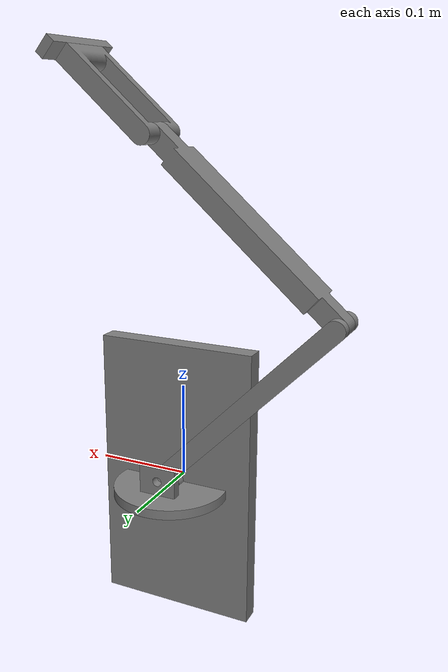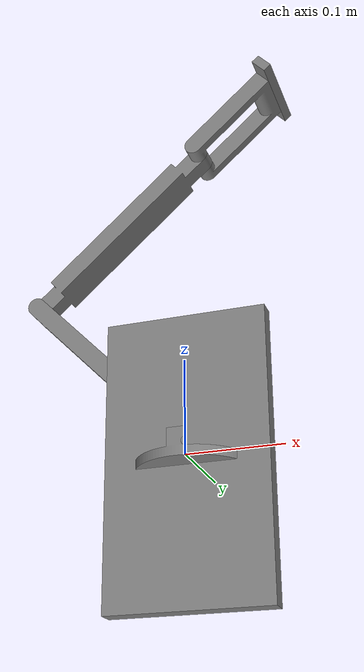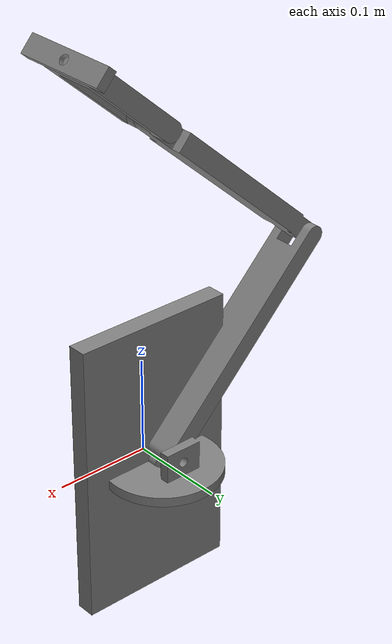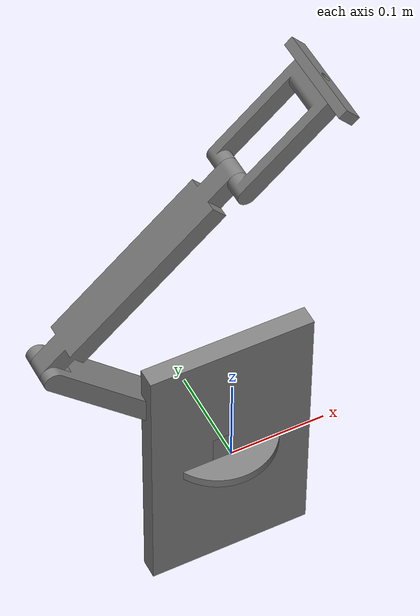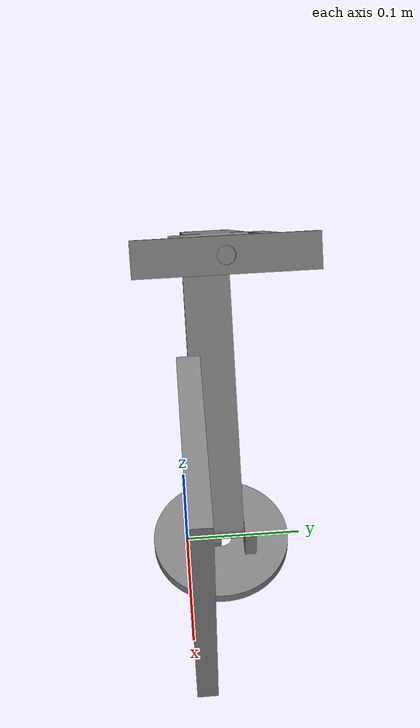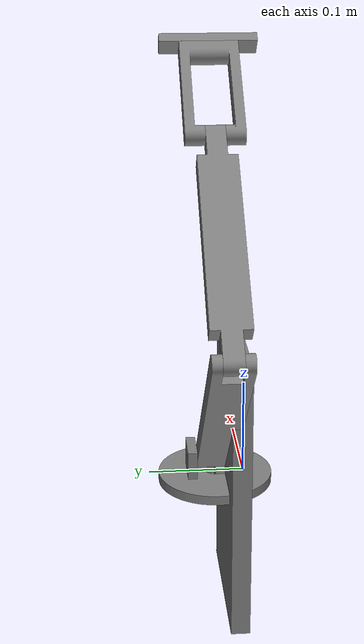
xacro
<?xml version="1.0"?>
<robot xmlns:xacro="http://www.ros.org/wiki/xacro">
    <material name="gray">
        <color rgba ="0.5 0.5 0.5 1.0"/>
    </material>

    <link name = "base_link">
        <visual>
            <origin xyz="0 0 0"/>
            <geometry>
                <mesh filename="package://aurora_arm_v2/meshes/base_link.stl" scale="0.001 0.001 0.001"/>
            </geometry>
            <material name="gray"/>
        </visual>
        <collision>
            <origin xyz="0 0 0"/>
            <geometry>
                <mesh filename="package://aurora_arm_v2/meshes/base_link.stl" scale="0.001 0.001 0.001"/>
            </geometry>
        </collision>
    </link>

    <link name = "base_spin_link">
        <visual>
            <origin xyz="-0.0 -0.03 -0.0"/>
            <geometry>
                <mesh filename="package://aurora_arm_v2/meshes/arm1_link_1.stl" scale="0.001 0.001 0.001"/>
            </geometry>
            <material name="gray"/>
        </visual>
        <collision>
            <origin xyz="-0.0 -0.03 -0.0"/>
            <geometry>
                <mesh filename="package://aurora_arm_v2/meshes/arm1_link_1.stl" scale="0.001 0.001 0.001"/>
            </geometry>
        </collision>
    </link>

    <link name = "arm2_link">
        <visual>
            <origin xyz="5e-06 -0.045 0.02"/>
            <geometry>
                <mesh filename="package://aurora_arm_v2/meshes/arm2_link_1.stl" scale="0.001 0.001 0.001"/>
            </geometry>
            <material name="gray"/>
        </visual>

        <collision>
            <origin xyz="5e-06 -0.045 0.02"/>
            <geometry>
                <mesh filename="package://aurora_arm_v2/meshes/arm2_link_1.stl" scale="0.001 0.001 0.001"/>
            </geometry>
        </collision>

    </link>

    <link name = "arm3_link">
        <visual>
            <origin xyz="0.175348 -0.223192 -0.010046"/>
            <geometry>
                <mesh filename="package://aurora_arm_v2/meshes/arm3_link_1.stl" scale="0.001 0.001 0.001"/>
            </geometry>
            <material name="gray"/>
        </visual>

        <collision>
            <origin xyz="0.175348 -0.223192 -0.010046"/>
            <geometry>
                <mesh filename="package://aurora_arm_v2/meshes/arm3_link_1.stl" scale="0.001 0.001 0.001"/>
            </geometry>
        </collision>

    </link>

    <link name = "arm4_link">
        <visual>
            <origin xyz="-0.011997 -0.388722 0.010003"/>
            <geometry>
                <mesh filename="package://aurora_arm_v2/meshes/arm4_link_1.stl" scale="0.001 0.001 0.001"/>
            </geometry>
            <material name="gray"/>
        </visual>

        <collision>
            <origin xyz="-0.011997 -0.388722 0.010003"/>
            <geometry>
                <mesh filename="package://aurora_arm_v2/meshes/arm4_link_1.stl" scale="0.001 0.001 0.001"/>
            </geometry>
        </collision>

    </link>

    <link name = "arm5_link">
        <visual>
            <origin xyz="-0.026167 -0.502846 7e-06"/>
            <geometry>
                <mesh filename="package://aurora_arm_v2/meshes/arm5_link_1.stl" scale="0.001 0.001 0.001"/>
            </geometry>
            <material name="gray"/>
        </visual>

        <collision>
            <origin xyz="-0.026167 -0.502846 7e-06"/>
            <geometry>
                <mesh filename="package://aurora_arm_v2/meshes/arm5_link_1.stl" scale="0.001 0.001 0.001"/>
            </geometry>
        </collision>

    </link>

    <joint name ="body_spin_joint" type="fixed">
        <parent link="base_link"/>
        <child link="base_spin_link"/>
        <origin xyz="0.0 0.03 0.0" rpy="1.5707963267948966 0 0"/>
        <axis xyz="0.0 1.0 0.0"/>
        <limit upper="-0.392699" lower="-2.748894" effort="100" velocity="100"/>
    </joint>

    <joint name ="arm1_joint" type="revolute">
        <parent link="base_spin_link"/>
        <child link="arm2_link"/>
        <origin xyz="-5e-06 0.015 -0.02" rpy="0 0 0"/>
        <axis xyz="-0.00026 -0.0 -1.0"/>
        <limit upper="1.570796" lower="-0.785398" effort="100" velocity="100"/>
    </joint>

    <joint name="arm2_joint" type="revolute">
        <parent link="arm2_link"/>
        <child link="arm3_link"/>
        <origin xyz="-0.175343 0.178192 0.030046" rpy="0 0 0"/>
        <axis xyz="-0.00026 0.0 -1.0"/>
        <limit upper="0.785398" lower="-3.141593" effort="100" velocity="100"/>
    </joint>

    <joint name="arm3_joint" type="revolute">
        <parent link="arm3_link"/>
        <child link="arm4_link"/>
        <origin xyz="0.187345 0.16553 -0.020049" rpy="0 0 0"/>
        <axis xyz="-0.00026 0.0 -1.0"/>
        <limit upper="1.570796" lower="-0.872665" effort="100" velocity="100"/>
    </joint>

    <joint name="arm4_joint" type="revolute">
        <parent link="arm4_link"/>
        <child link="arm5_link"/>
        <origin xyz="0.01417 0.114124 0.009996" rpy="0 0 0"/>
        <axis xyz="0.749398 0.662119 -0.000195"/>
        <limit upper="2.356194" lower="-2.356194" effort="100" velocity="100"/>
    </joint>

</robot>
